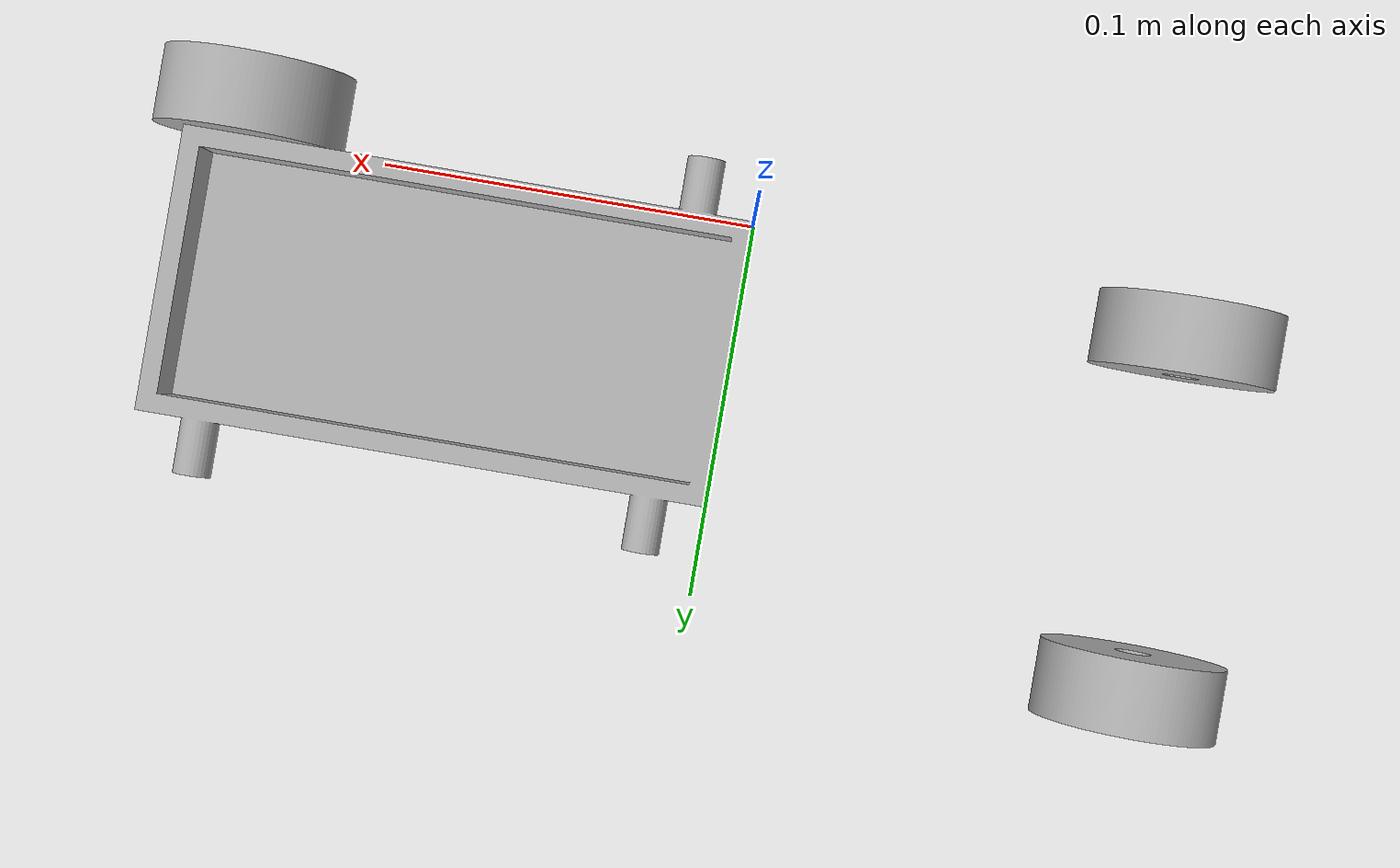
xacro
<?xml version="1.0" ?>
<robot name="SimpleRobot" xmlns:xacro="http://www.ros.org/wiki/xacro">

<xacro:include filename="$(find SimpleRobot_description)/urdf/materials.xacro" />
<xacro:include filename="$(find SimpleRobot_description)/urdf/SimpleRobot.trans" />
<xacro:include filename="$(find SimpleRobot_description)/urdf/SimpleRobot.gazebo" />
<link name="base_link">
  <inertial>
    <origin xyz="-0.06000000021227006 0.05750000000000002 -0.0036609941759924054" rpy="0 0 0"/>
    <mass value="0.25167345024703813"/>
    <inertia ixx="0.000189" iyy="0.000591" izz="0.000764" ixy="0.0" iyz="0.0" ixz="-0.0"/>
  </inertial>
  <visual>
    <origin xyz="0 0 0" rpy="0 0 0"/>
    <geometry>
      <mesh filename="package://SimpleRobot_description/meshes/base_link.stl" scale="0.001 0.001 0.001"/>
    </geometry>
    <material name="silver"/>
  </visual>
  <collision>
    <origin xyz="0 0 0" rpy="0 0 0"/>
    <geometry>
      <mesh filename="package://SimpleRobot_description/meshes/base_link.stl" scale="0.001 0.001 0.001"/>
    </geometry>
  </collision>
</link>

<link name="Wheel__1__1">
  <inertial>
    <origin xyz="1.639225375363792e-14 -0.004922680412371122 3.3396515454079236e-17" rpy="0 0 0"/>
    <mass value="0.04037731958026277"/>
    <inertia ixx="8e-06" iyy="1.3e-05" izz="8e-06" ixy="0.0" iyz="-0.0" ixz="0.0"/>
  </inertial>
  <visual>
    <origin xyz="-0.0 -0.11 -0.0" rpy="0 0 0"/>
    <geometry>
      <mesh filename="package://SimpleRobot_description/meshes/Wheel__1__1.stl" scale="0.001 0.001 0.001"/>
    </geometry>
    <material name="silver"/>
  </visual>
  <collision>
    <origin xyz="-0.0 -0.11 -0.0" rpy="0 0 0"/>
    <geometry>
      <mesh filename="package://SimpleRobot_description/meshes/Wheel__1__1.stl" scale="0.001 0.001 0.001"/>
    </geometry>
  </collision>
</link>

<link name="Wheel__3__1">
  <inertial>
    <origin xyz="1.637578961322106e-14 -0.004922680412371122 1.8408504621639616e-17" rpy="0 0 0"/>
    <mass value="0.04037731958026277"/>
    <inertia ixx="8e-06" iyy="1.3e-05" izz="8e-06" ixy="0.0" iyz="-0.0" ixz="0.0"/>
  </inertial>
  <visual>
    <origin xyz="0.12 -0.11 -0.0" rpy="0 0 0"/>
    <geometry>
      <mesh filename="package://SimpleRobot_description/meshes/Wheel__3__1.stl" scale="0.001 0.001 0.001"/>
    </geometry>
    <material name="silver"/>
  </visual>
  <collision>
    <origin xyz="0.12 -0.11 -0.0" rpy="0 0 0"/>
    <geometry>
      <mesh filename="package://SimpleRobot_description/meshes/Wheel__3__1.stl" scale="0.001 0.001 0.001"/>
    </geometry>
  </collision>
</link>

<link name="Wheel__2__1">
  <inertial>
    <origin xyz="1.637578961322106e-14 0.00492268041237113 -4.53071681382516e-18" rpy="0 0 0"/>
    <mass value="0.04037731958026277"/>
    <inertia ixx="8e-06" iyy="1.3e-05" izz="8e-06" ixy="-0.0" iyz="-0.0" ixz="-0.0"/>
  </inertial>
  <visual>
    <origin xyz="0.12 -0.005 -0.0" rpy="0 0 0"/>
    <geometry>
      <mesh filename="package://SimpleRobot_description/meshes/Wheel__2__1.stl" scale="0.001 0.001 0.001"/>
    </geometry>
    <material name="silver"/>
  </visual>
  <collision>
    <origin xyz="0.12 -0.005 -0.0" rpy="0 0 0"/>
    <geometry>
      <mesh filename="package://SimpleRobot_description/meshes/Wheel__2__1.stl" scale="0.001 0.001 0.001"/>
    </geometry>
  </collision>
</link>

<joint name="Revolute 5" type="continuous">
  <origin xyz="0.0 0.11 0.0" rpy="0 0 0"/>
  <parent link="base_link"/>
  <child link="Wheel__1__1"/>
  <axis xyz="0.0 1.0 0.0"/>
</joint>

<joint name="Revolute 6" type="continuous">
  <origin xyz="-0.12 0.11 0.0" rpy="0 0 0"/>
  <parent link="base_link"/>
  <child link="Wheel__3__1"/>
  <axis xyz="0.0 1.0 0.0"/>
</joint>

<joint name="Revolute 7" type="continuous">
  <origin xyz="-0.12 0.005 0.0" rpy="0 0 0"/>
  <parent link="base_link"/>
  <child link="Wheel__2__1"/>
  <axis xyz="0.0 -1.0 0.0"/>
</joint>

</robot>

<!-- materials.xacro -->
<robot name="SimpleRobot" xmlns:xacro="http://www.ros.org/wiki/xacro" >

<material name="silver">
  <color rgba="0.700 0.700 0.700 1.000"/>
</material>

</robot>

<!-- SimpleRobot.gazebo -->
<robot name="SimpleRobot" xmlns:xacro="http://www.ros.org/wiki/xacro" >

<xacro:property name="body_color" value="Gazebo/Silver" />

<gazebo>
  <plugin name="control" filename="libgazebo_ros_control.so"/>
</gazebo>
<gazebo reference="base_link">
  <material>${body_color}</material>
  <mu1>0.2</mu1>
  <mu2>0.2</mu2>
  <selfCollide>true</selfCollide>
  <gravity>true</gravity>
</gazebo>

<gazebo reference="Wheel__1__1">
  <material>${body_color}</material>
  <mu1>0.2</mu1>
  <mu2>0.2</mu2>
  <selfCollide>true</selfCollide>
</gazebo>

<gazebo reference="Wheel__3__1">
  <material>${body_color}</material>
  <mu1>0.2</mu1>
  <mu2>0.2</mu2>
  <selfCollide>true</selfCollide>
</gazebo>

<gazebo reference="Wheel__2__1">
  <material>${body_color}</material>
  <mu1>0.2</mu1>
  <mu2>0.2</mu2>
  <selfCollide>true</selfCollide>
</gazebo>

</robot>
